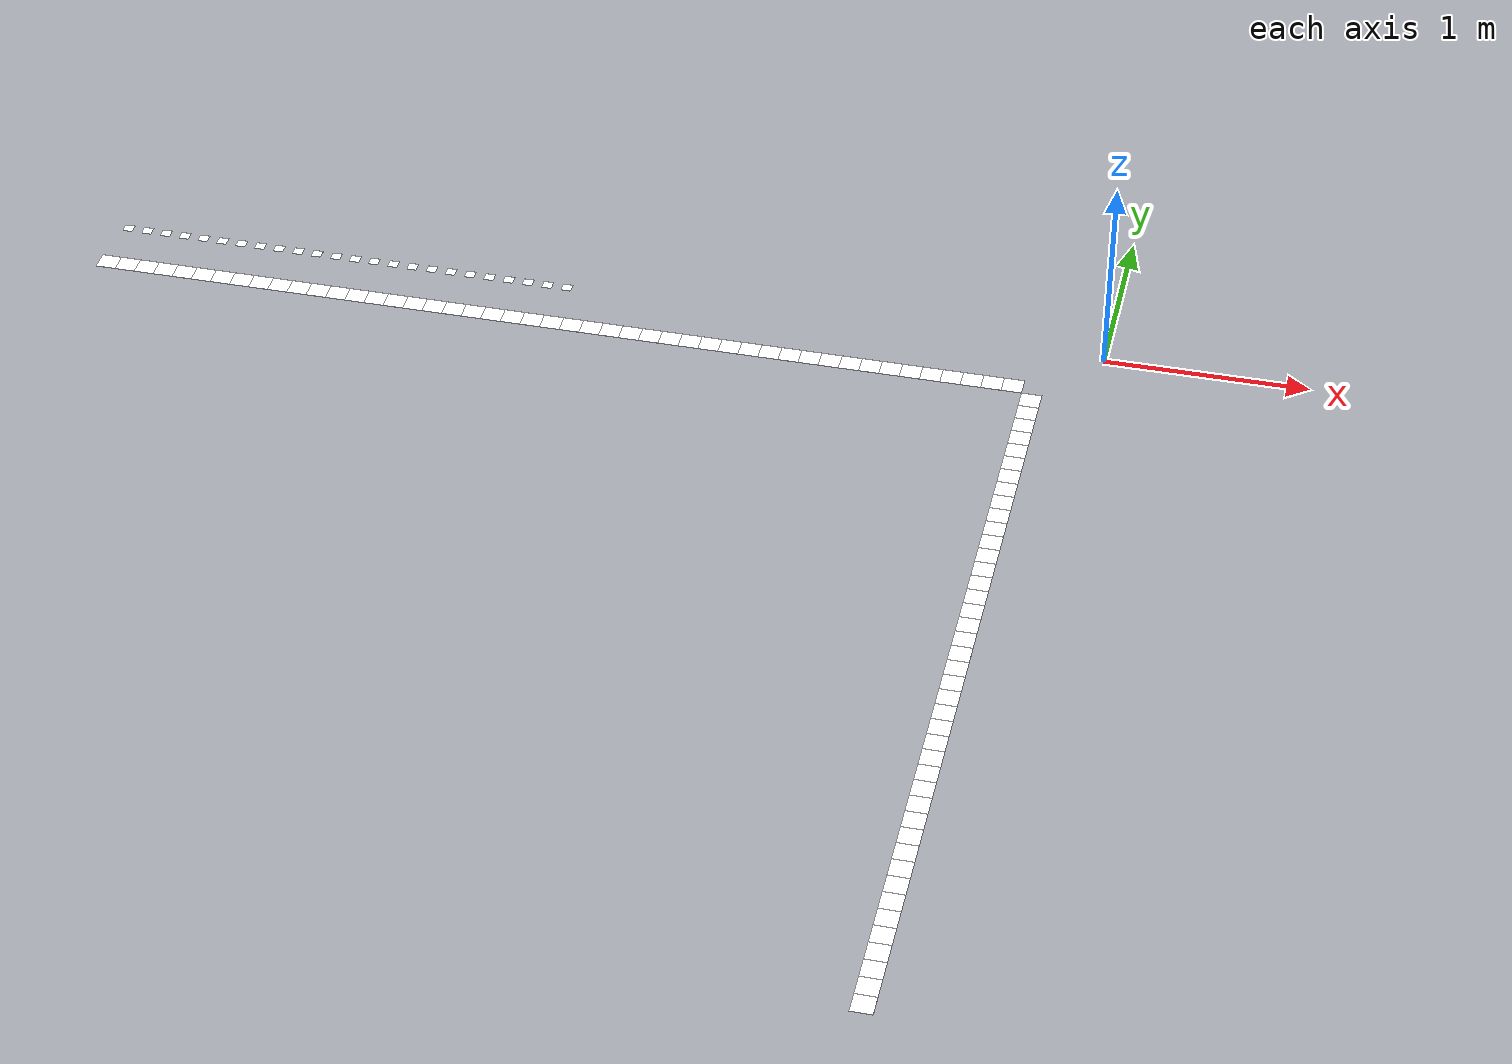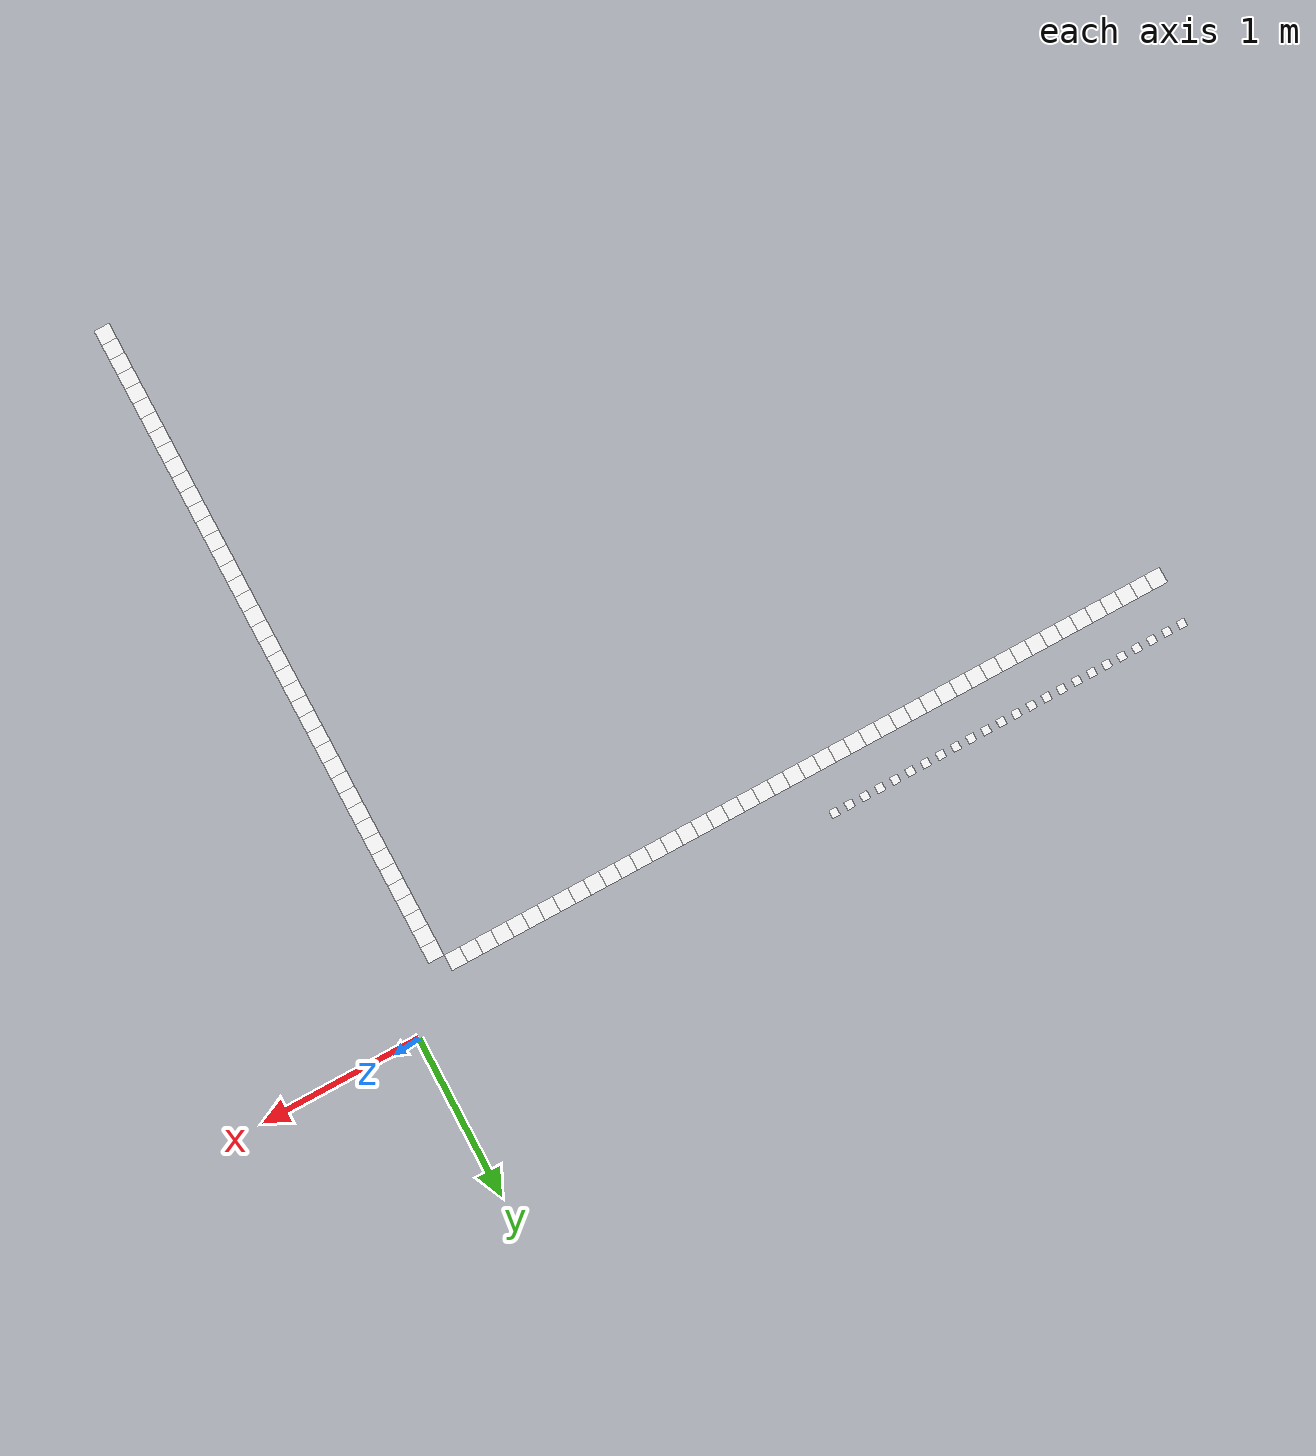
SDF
<sdf version="1.5">
 <model name="AutoNOMOS_mini_intersection">
  <static>true</static>
  <link name="L8_p4">
   <pose>-0.4 -0.3 .011 0 0 0</pose>
   <visual name="visual_L8_p4">
    <cast_shadows>false</cast_shadows>
    <geometry><plane><normal>0 0 1</normal><size>.1 .1</size></plane></geometry>
    <material>
     <ambient>0 0 0 0</ambient>
     <diffuse>1 1 1 0</diffuse>
     <specular>0 0 0 0</specular>
     <emissive>0 0 0 0</emissive>
    </material>
   </visual>
  </link>
  <link name="L9_p4">
   <pose>-0.3 -0.4 .011 0 0 0</pose>
   <visual name="visual_L9_p4">
    <cast_shadows>false</cast_shadows>
    <geometry><plane><normal>0 0 1</normal><size>.1 .1</size></plane></geometry>
    <material>
     <ambient>0 0 0 0</ambient>
     <diffuse>1 1 1 0</diffuse>
     <specular>0 0 0 0</specular>
     <emissive>0 0 0 0</emissive>
    </material>
   </visual>
  </link>
  <link name="L8_p5">
   <pose>-0.5 -0.3 .011 0 0 0</pose>
   <visual name="visual_L8_p5">
    <cast_shadows>false</cast_shadows>
    <geometry><plane><normal>0 0 1</normal><size>.1 .1</size></plane></geometry>
    <material>
     <ambient>0 0 0 0</ambient>
     <diffuse>1 1 1 0</diffuse>
     <specular>0 0 0 0</specular>
     <emissive>0 0 0 0</emissive>
    </material>
   </visual>
  </link>
  <link name="L9_p5">
   <pose>-0.3 -0.5 .011 0 0 0</pose>
   <visual name="visual_L9_p5">
    <cast_shadows>false</cast_shadows>
    <geometry><plane><normal>0 0 1</normal><size>.1 .1</size></plane></geometry>
    <material>
     <ambient>0 0 0 0</ambient>
     <diffuse>1 1 1 0</diffuse>
     <specular>0 0 0 0</specular>
     <emissive>0 0 0 0</emissive>
    </material>
   </visual>
  </link>
  <link name="L8_p6">
   <pose>-0.6 -0.3 .011 0 0 0</pose>
   <visual name="visual_L8_p6">
    <cast_shadows>false</cast_shadows>
    <geometry><plane><normal>0 0 1</normal><size>.1 .1</size></plane></geometry>
    <material>
     <ambient>0 0 0 0</ambient>
     <diffuse>1 1 1 0</diffuse>
     <specular>0 0 0 0</specular>
     <emissive>0 0 0 0</emissive>
    </material>
   </visual>
  </link>
  <link name="L9_p6">
   <pose>-0.3 -0.6 .011 0 0 0</pose>
   <visual name="visual_L9_p6">
    <cast_shadows>false</cast_shadows>
    <geometry><plane><normal>0 0 1</normal><size>.1 .1</size></plane></geometry>
    <material>
     <ambient>0 0 0 0</ambient>
     <diffuse>1 1 1 0</diffuse>
     <specular>0 0 0 0</specular>
     <emissive>0 0 0 0</emissive>
    </material>
   </visual>
  </link>
  <link name="L8_p7">
   <pose>-0.7 -0.3 .011 0 0 0</pose>
   <visual name="visual_L8_p7">
    <cast_shadows>false</cast_shadows>
    <geometry><plane><normal>0 0 1</normal><size>.1 .1</size></plane></geometry>
    <material>
     <ambient>0 0 0 0</ambient>
     <diffuse>1 1 1 0</diffuse>
     <specular>0 0 0 0</specular>
     <emissive>0 0 0 0</emissive>
    </material>
   </visual>
  </link>
  <link name="L9_p7">
   <pose>-0.3 -0.7 .011 0 0 0</pose>
   <visual name="visual_L9_p7">
    <cast_shadows>false</cast_shadows>
    <geometry><plane><normal>0 0 1</normal><size>.1 .1</size></plane></geometry>
    <material>
     <ambient>0 0 0 0</ambient>
     <diffuse>1 1 1 0</diffuse>
     <specular>0 0 0 0</specular>
     <emissive>0 0 0 0</emissive>
    </material>
   </visual>
  </link>
  <link name="L8_p8">
   <pose>-0.8 -0.3 .011 0 0 0</pose>
   <visual name="visual_L8_p8">
    <cast_shadows>false</cast_shadows>
    <geometry><plane><normal>0 0 1</normal><size>.1 .1</size></plane></geometry>
    <material>
     <ambient>0 0 0 0</ambient>
     <diffuse>1 1 1 0</diffuse>
     <specular>0 0 0 0</specular>
     <emissive>0 0 0 0</emissive>
    </material>
   </visual>
  </link>
  <link name="L9_p8">
   <pose>-0.3 -0.8 .011 0 0 0</pose>
   <visual name="visual_L9_p8">
    <cast_shadows>false</cast_shadows>
    <geometry><plane><normal>0 0 1</normal><size>.1 .1</size></plane></geometry>
    <material>
     <ambient>0 0 0 0</ambient>
     <diffuse>1 1 1 0</diffuse>
     <specular>0 0 0 0</specular>
     <emissive>0 0 0 0</emissive>
    </material>
   </visual>
  </link>
  <link name="L8_p9">
   <pose>-0.9 -0.3 .011 0 0 0</pose>
   <visual name="visual_L8_p9">
    <cast_shadows>false</cast_shadows>
    <geometry><plane><normal>0 0 1</normal><size>.1 .1</size></plane></geometry>
    <material>
     <ambient>0 0 0 0</ambient>
     <diffuse>1 1 1 0</diffuse>
     <specular>0 0 0 0</specular>
     <emissive>0 0 0 0</emissive>
    </material>
   </visual>
  </link>
  <link name="L9_p9">
   <pose>-0.3 -0.9 .011 0 0 0</pose>
   <visual name="visual_L9_p9">
    <cast_shadows>false</cast_shadows>
    <geometry><plane><normal>0 0 1</normal><size>.1 .1</size></plane></geometry>
    <material>
     <ambient>0 0 0 0</ambient>
     <diffuse>1 1 1 0</diffuse>
     <specular>0 0 0 0</specular>
     <emissive>0 0 0 0</emissive>
    </material>
   </visual>
  </link>
  <link name="L8_p10">
   <pose>-1 -0.3 .011 0 0 0</pose>
   <visual name="visual_L8_p10">
    <cast_shadows>false</cast_shadows>
    <geometry><plane><normal>0 0 1</normal><size>.1 .1</size></plane></geometry>
    <material>
     <ambient>0 0 0 0</ambient>
     <diffuse>1 1 1 0</diffuse>
     <specular>0 0 0 0</specular>
     <emissive>0 0 0 0</emissive>
    </material>
   </visual>
  </link>
  <link name="L9_p10">
   <pose>-0.3 -1 .011 0 0 0</pose>
   <visual name="visual_L9_p10">
    <cast_shadows>false</cast_shadows>
    <geometry><plane><normal>0 0 1</normal><size>.1 .1</size></plane></geometry>
    <material>
     <ambient>0 0 0 0</ambient>
     <diffuse>1 1 1 0</diffuse>
     <specular>0 0 0 0</specular>
     <emissive>0 0 0 0</emissive>
    </material>
   </visual>
  </link>
  <link name="L8_p11">
   <pose>-1.1 -0.3 .011 0 0 0</pose>
   <visual name="visual_L8_p11">
    <cast_shadows>false</cast_shadows>
    <geometry><plane><normal>0 0 1</normal><size>.1 .1</size></plane></geometry>
    <material>
     <ambient>0 0 0 0</ambient>
     <diffuse>1 1 1 0</diffuse>
     <specular>0 0 0 0</specular>
     <emissive>0 0 0 0</emissive>
    </material>
   </visual>
  </link>
  <link name="L9_p11">
   <pose>-0.3 -1.1 .011 0 0 0</pose>
   <visual name="visual_L9_p11">
    <cast_shadows>false</cast_shadows>
    <geometry><plane><normal>0 0 1</normal><size>.1 .1</size></plane></geometry>
    <material>
     <ambient>0 0 0 0</ambient>
     <diffuse>1 1 1 0</diffuse>
     <specular>0 0 0 0</specular>
     <emissive>0 0 0 0</emissive>
    </material>
   </visual>
  </link>
  <link name="L8_p12">
   <pose>-1.2 -0.3 .011 0 0 0</pose>
   <visual name="visual_L8_p12">
    <cast_shadows>false</cast_shadows>
    <geometry><plane><normal>0 0 1</normal><size>.1 .1</size></plane></geometry>
    <material>
     <ambient>0 0 0 0</ambient>
     <diffuse>1 1 1 0</diffuse>
     <specular>0 0 0 0</specular>
     <emissive>0 0 0 0</emissive>
    </material>
   </visual>
  </link>
  <link name="L9_p12">
   <pose>-0.3 -1.2 .011 0 0 0</pose>
   <visual name="visual_L9_p12">
    <cast_shadows>false</cast_shadows>
    <geometry><plane><normal>0 0 1</normal><size>.1 .1</size></plane></geometry>
    <material>
     <ambient>0 0 0 0</ambient>
     <diffuse>1 1 1 0</diffuse>
     <specular>0 0 0 0</specular>
     <emissive>0 0 0 0</emissive>
    </material>
   </visual>
  </link>
  <link name="L8_p13">
   <pose>-1.3 -0.3 .011 0 0 0</pose>
   <visual name="visual_L8_p13">
    <cast_shadows>false</cast_shadows>
    <geometry><plane><normal>0 0 1</normal><size>.1 .1</size></plane></geometry>
    <material>
     <ambient>0 0 0 0</ambient>
     <diffuse>1 1 1 0</diffuse>
     <specular>0 0 0 0</specular>
     <emissive>0 0 0 0</emissive>
    </material>
   </visual>
  </link>
  <link name="L9_p13">
   <pose>-0.3 -1.3 .011 0 0 0</pose>
   <visual name="visual_L9_p13">
    <cast_shadows>false</cast_shadows>
    <geometry><plane><normal>0 0 1</normal><size>.1 .1</size></plane></geometry>
    <material>
     <ambient>0 0 0 0</ambient>
     <diffuse>1 1 1 0</diffuse>
     <specular>0 0 0 0</specular>
     <emissive>0 0 0 0</emissive>
    </material>
   </visual>
  </link>
  <link name="L8_p14">
   <pose>-1.4 -0.3 .011 0 0 0</pose>
   <visual name="visual_L8_p14">
    <cast_shadows>false</cast_shadows>
    <geometry><plane><normal>0 0 1</normal><size>.1 .1</size></plane></geometry>
    <material>
     <ambient>0 0 0 0</ambient>
     <diffuse>1 1 1 0</diffuse>
     <specular>0 0 0 0</specular>
     <emissive>0 0 0 0</emissive>
    </material>
   </visual>
  </link>
  <link name="L9_p14">
   <pose>-0.3 -1.4 .011 0 0 0</pose>
   <visual name="visual_L9_p14">
    <cast_shadows>false</cast_shadows>
    <geometry><plane><normal>0 0 1</normal><size>.1 .1</size></plane></geometry>
    <material>
     <ambient>0 0 0 0</ambient>
     <diffuse>1 1 1 0</diffuse>
     <specular>0 0 0 0</specular>
     <emissive>0 0 0 0</emissive>
    </material>
   </visual>
  </link>
  <link name="L8_p15">
   <pose>-1.5 -0.3 .011 0 0 0</pose>
   <visual name="visual_L8_p15">
    <cast_shadows>false</cast_shadows>
    <geometry><plane><normal>0 0 1</normal><size>.1 .1</size></plane></geometry>
    <material>
     <ambient>0 0 0 0</ambient>
     <diffuse>1 1 1 0</diffuse>
     <specular>0 0 0 0</specular>
     <emissive>0 0 0 0</emissive>
    </material>
   </visual>
  </link>
  <link name="L9_p15">
   <pose>-0.3 -1.5 .011 0 0 0</pose>
   <visual name="visual_L9_p15">
    <cast_shadows>false</cast_shadows>
    <geometry><plane><normal>0 0 1</normal><size>.1 .1</size></plane></geometry>
    <material>
     <ambient>0 0 0 0</ambient>
     <diffuse>1 1 1 0</diffuse>
     <specular>0 0 0 0</specular>
     <emissive>0 0 0 0</emissive>
    </material>
   </visual>
  </link>
  <link name="L8_p16">
   <pose>-1.6 -0.3 .011 0 0 0</pose>
   <visual name="visual_L8_p16">
    <cast_shadows>false</cast_shadows>
    <geometry><plane><normal>0 0 1</normal><size>.1 .1</size></plane></geometry>
    <material>
     <ambient>0 0 0 0</ambient>
     <diffuse>1 1 1 0</diffuse>
     <specular>0 0 0 0</specular>
     <emissive>0 0 0 0</emissive>
    </material>
   </visual>
  </link>
  <link name="L9_p16">
   <pose>-0.3 -1.6 .011 0 0 0</pose>
   <visual name="visual_L9_p16">
    <cast_shadows>false</cast_shadows>
    <geometry><plane><normal>0 0 1</normal><size>.1 .1</size></plane></geometry>
    <material>
     <ambient>0 0 0 0</ambient>
     <diffuse>1 1 1 0</diffuse>
     <specular>0 0 0 0</specular>
     <emissive>0 0 0 0</emissive>
    </material>
   </visual>
  </link>
  <link name="L8_p17">
   <pose>-1.7 -0.3 .011 0 0 0</pose>
   <visual name="visual_L8_p17">
    <cast_shadows>false</cast_shadows>
    <geometry><plane><normal>0 0 1</normal><size>.1 .1</size></plane></geometry>
    <material>
     <ambient>0 0 0 0</ambient>
     <diffuse>1 1 1 0</diffuse>
     <specular>0 0 0 0</specular>
     <emissive>0 0 0 0</emissive>
    </material>
   </visual>
  </link>
  <link name="L9_p17">
   <pose>-0.3 -1.7 .011 0 0 0</pose>
   <visual name="visual_L9_p17">
    <cast_shadows>false</cast_shadows>
    <geometry><plane><normal>0 0 1</normal><size>.1 .1</size></plane></geometry>
    <material>
     <ambient>0 0 0 0</ambient>
     <diffuse>1 1 1 0</diffuse>
     <specular>0 0 0 0</specular>
     <emissive>0 0 0 0</emissive>
    </material>
   </visual>
  </link>
  <link name="L8_p18">
   <pose>-1.8 -0.3 .011 0 0 0</pose>
   <visual name="visual_L8_p18">
    <cast_shadows>false</cast_shadows>
    <geometry><plane><normal>0 0 1</normal><size>.1 .1</size></plane></geometry>
    <material>
     <ambient>0 0 0 0</ambient>
     <diffuse>1 1 1 0</diffuse>
     <specular>0 0 0 0</specular>
     <emissive>0 0 0 0</emissive>
    </material>
   </visual>
  </link>
  <link name="L9_p18">
   <pose>-0.3 -1.8 .011 0 0 0</pose>
   <visual name="visual_L9_p18">
    <cast_shadows>false</cast_shadows>
    <geometry><plane><normal>0 0 1</normal><size>.1 .1</size></plane></geometry>
    <material>
     <ambient>0 0 0 0</ambient>
     <diffuse>1 1 1 0</diffuse>
     <specular>0 0 0 0</specular>
     <emissive>0 0 0 0</emissive>
    </material>
   </visual>
  </link>
  <link name="L8_p19">
   <pose>-1.9 -0.3 .011 0 0 0</pose>
   <visual name="visual_L8_p19">
    <cast_shadows>false</cast_shadows>
    <geometry><plane><normal>0 0 1</normal><size>.1 .1</size></plane></geometry>
    <material>
     <ambient>0 0 0 0</ambient>
     <diffuse>1 1 1 0</diffuse>
     <specular>0 0 0 0</specular>
     <emissive>0 0 0 0</emissive>
    </material>
   </visual>
  </link>
  <link name="L9_p19">
   <pose>-0.3 -1.9 .011 0 0 0</pose>
   <visual name="visual_L9_p19">
    <cast_shadows>false</cast_shadows>
    <geometry><plane><normal>0 0 1</normal><size>.1 .1</size></plane></geometry>
    <material>
     <ambient>0 0 0 0</ambient>
     <diffuse>1 1 1 0</diffuse>
     <specular>0 0 0 0</specular>
     <emissive>0 0 0 0</emissive>
    </material>
   </visual>
  </link>
  <link name="L8_p20">
   <pose>-2 -0.3 .011 0 0 0</pose>
   <visual name="visual_L8_p20">
    <cast_shadows>false</cast_shadows>
    <geometry><plane><normal>0 0 1</normal><size>.1 .1</size></plane></geometry>
    <material>
     <ambient>0 0 0 0</ambient>
     <diffuse>1 1 1 0</diffuse>
     <specular>0 0 0 0</specular>
     <emissive>0 0 0 0</emissive>
    </material>
   </visual>
  </link>
  <link name="L9_p20">
   <pose>-0.3 -2 .011 0 0 0</pose>
   <visual name="visual_L9_p20">
    <cast_shadows>false</cast_shadows>
    <geometry><plane><normal>0 0 1</normal><size>.1 .1</size></plane></geometry>
    <material>
     <ambient>0 0 0 0</ambient>
     <diffuse>1 1 1 0</diffuse>
     <specular>0 0 0 0</specular>
     <emissive>0 0 0 0</emissive>
    </material>
   </visual>
  </link>
  <link name="L8_p21">
   <pose>-2.1 -0.3 .011 0 0 0</pose>
   <visual name="visual_L8_p21">
    <cast_shadows>false</cast_shadows>
    <geometry><plane><normal>0 0 1</normal><size>.1 .1</size></plane></geometry>
    <material>
     <ambient>0 0 0 0</ambient>
     <diffuse>1 1 1 0</diffuse>
     <specular>0 0 0 0</specular>
     <emissive>0 0 0 0</emissive>
    </material>
   </visual>
  </link>
  <link name="L9_p21">
   <pose>-0.3 -2.1 .011 0 0 0</pose>
   <visual name="visual_L9_p21">
    <cast_shadows>false</cast_shadows>
    <geometry><plane><normal>0 0 1</normal><size>.1 .1</size></plane></geometry>
    <material>
     <ambient>0 0 0 0</ambient>
     <diffuse>1 1 1 0</diffuse>
     <specular>0 0 0 0</specular>
     <emissive>0 0 0 0</emissive>
    </material>
   </visual>
  </link>
  <link name="L8_p22">
   <pose>-2.2 -0.3 .011 0 0 0</pose>
   <visual name="visual_L8_p22">
    <cast_shadows>false</cast_shadows>
    <geometry><plane><normal>0 0 1</normal><size>.1 .1</size></plane></geometry>
    <material>
     <ambient>0 0 0 0</ambient>
     <diffuse>1 1 1 0</diffuse>
     <specular>0 0 0 0</specular>
     <emissive>0 0 0 0</emissive>
    </material>
   </visual>
  </link>
  <link name="L9_p22">
   <pose>-0.3 -2.2 .011 0 0 0</pose>
   <visual name="visual_L9_p22">
    <cast_shadows>false</cast_shadows>
    <geometry><plane><normal>0 0 1</normal><size>.1 .1</size></plane></geometry>
    <material>
     <ambient>0 0 0 0</ambient>
     <diffuse>1 1 1 0</diffuse>
     <specular>0 0 0 0</specular>
     <emissive>0 0 0 0</emissive>
    </material>
   </visual>
  </link>
  <link name="L8_p23">
   <pose>-2.3 -0.3 .011 0 0 0</pose>
   <visual name="visual_L8_p23">
    <cast_shadows>false</cast_shadows>
    <geometry><plane><normal>0 0 1</normal><size>.1 .1</size></plane></geometry>
    <material>
     <ambient>0 0 0 0</ambient>
     <diffuse>1 1 1 0</diffuse>
     <specular>0 0 0 0</specular>
     <emissive>0 0 0 0</emissive>
    </material>
   </visual>
  </link>
  <link name="L9_p23">
   <pose>-0.3 -2.3 .011 0 0 0</pose>
   <visual name="visual_L9_p23">
    <cast_shadows>false</cast_shadows>
    <geometry><plane><normal>0 0 1</normal><size>.1 .1</size></plane></geometry>
    <material>
     <ambient>0 0 0 0</ambient>
     <diffuse>1 1 1 0</diffuse>
     <specular>0 0 0 0</specular>
     <emissive>0 0 0 0</emissive>
    </material>
   </visual>
  </link>
  <link name="L8_p24">
   <pose>-2.4 -0.3 .011 0 0 0</pose>
   <visual name="visual_L8_p24">
    <cast_shadows>false</cast_shadows>
    <geometry><plane><normal>0 0 1</normal><size>.1 .1</size></plane></geometry>
    <material>
     <ambient>0 0 0 0</ambient>
     <diffuse>1 1 1 0</diffuse>
     <specular>0 0 0 0</specular>
     <emissive>0 0 0 0</emissive>
    </material>
   </visual>
  </link>
  <link name="L9_p24">
   <pose>-0.3 -2.4 .011 0 0 0</pose>
   <visual name="visual_L9_p24">
    <cast_shadows>false</cast_shadows>
    <geometry><plane><normal>0 0 1</normal><size>.1 .1</size></plane></geometry>
    <material>
     <ambient>0 0 0 0</ambient>
     <diffuse>1 1 1 0</diffuse>
     <specular>0 0 0 0</specular>
     <emissive>0 0 0 0</emissive>
    </material>
   </visual>
  </link>
  <link name="L8_p25">
   <pose>-2.5 -0.3 .011 0 0 0</pose>
   <visual name="visual_L8_p25">
    <cast_shadows>false</cast_shadows>
    <geometry><plane><normal>0 0 1</normal><size>.1 .1</size></plane></geometry>
    <material>
     <ambient>0 0 0 0</ambient>
     <diffuse>1 1 1 0</diffuse>
     <specular>0 0 0 0</specular>
     <emissive>0 0 0 0</emissive>
    </material>
   </visual>
  </link>
  <link name="L9_p25">
   <pose>-0.3 -2.5 .011 0 0 0</pose>
   <visual name="visual_L9_p25">
    <cast_shadows>false</cast_shadows>
    <geometry><plane><normal>0 0 1</normal><size>.1 .1</size></plane></geometry>
    <material>
     <ambient>0 0 0 0</ambient>
     <diffuse>1 1 1 0</diffuse>
     <specular>0 0 0 0</specular>
     <emissive>0 0 0 0</emissive>
    </material>
   </visual>
  </link>
  <link name="L8_p26">
   <pose>-2.6 -0.3 .011 0 0 0</pose>
   <visual name="visual_L8_p26">
    <cast_shadows>false</cast_shadows>
    <geometry><plane><normal>0 0 1</normal><size>.1 .1</size></plane></geometry>
    <material>
     <ambient>0 0 0 0</ambient>
     <diffuse>1 1 1 0</diffuse>
     <specular>0 0 0 0</specular>
     <emissive>0 0 0 0</emissive>
    </material>
   </visual>
  </link>
  <link name="L9_p26">
   <pose>-0.3 -2.6 .011 0 0 0</pose>
   <visual name="visual_L9_p26">
    <cast_shadows>false</cast_shadows>
    <geometry><plane><normal>0 0 1</normal><size>.1 .1</size></plane></geometry>
    <material>
     <ambient>0 0 0 0</ambient>
     <diffuse>1 1 1 0</diffuse>
     <specular>0 0 0 0</specular>
     <emissive>0 0 0 0</emissive>
    </material>
   </visual>
  </link>
  <link name="L7_p27">
   <pose>-2.7 0 .011 0 0 0</pose>
   <visual name="visual_L7_p27">
    <cast_shadows>false</cast_shadows>
    <geometry><plane><normal>0 0 1</normal><size>.05 .05</size></plane></geometry>
    <material>
     <ambient>0 0 0 0</ambient>
     <diffuse>1 1 1 0</diffuse>
     <specular>0 0 0 0</specular>
     <emissive>0 0 0 0</emissive>
    </material>
   </visual>
  </link>
  <link name="L8_p27">
   <pose>-2.7 -0.3 .011 0 0 0</pose>
   <visual name="visual_L8_p27">
    <cast_shadows>false</cast_shadows>
    <geometry><plane><normal>0 0 1</normal><size>.1 .1</size></plane></geometry>
    <material>
     <ambient>0 0 0 0</ambient>
     <diffuse>1 1 1 0</diffuse>
     <specular>0 0 0 0</specular>
     <emissive>0 0 0 0</emissive>
    </material>
   </visual>
  </link>
  <link name="L9_p27">
   <pose>-0.3 -2.7 .011 0 0 0</pose>
   <visual name="visual_L9_p27">
    <cast_shadows>false</cast_shadows>
    <geometry><plane><normal>0 0 1</normal><size>.1 .1</size></plane></geometry>
    <material>
     <ambient>0 0 0 0</ambient>
     <diffuse>1 1 1 0</diffuse>
     <specular>0 0 0 0</specular>
     <emissive>0 0 0 0</emissive>
    </material>
   </visual>
  </link>
  <link name="L7_p28">
   <pose>-2.8 0 .011 0 0 0</pose>
   <visual name="visual_L7_p28">
    <cast_shadows>false</cast_shadows>
    <geometry><plane><normal>0 0 1</normal><size>.05 .05</size></plane></geometry>
    <material>
     <ambient>0 0 0 0</ambient>
     <diffuse>1 1 1 0</diffuse>
     <specular>0 0 0 0</specular>
     <emissive>0 0 0 0</emissive>
    </material>
   </visual>
  </link>
  <link name="L8_p28">
   <pose>-2.8 -0.3 .011 0 0 0</pose>
   <visual name="visual_L8_p28">
    <cast_shadows>false</cast_shadows>
    <geometry><plane><normal>0 0 1</normal><size>.1 .1</size></plane></geometry>
    <material>
     <ambient>0 0 0 0</ambient>
     <diffuse>1 1 1 0</diffuse>
     <specular>0 0 0 0</specular>
     <emissive>0 0 0 0</emissive>
    </material>
   </visual>
  </link>
  <link name="L9_p28">
   <pose>-0.3 -2.8 .011 0 0 0</pose>
   <visual name="visual_L9_p28">
    <cast_shadows>false</cast_shadows>
    <geometry><plane><normal>0 0 1</normal><size>.1 .1</size></plane></geometry>
    <material>
     <ambient>0 0 0 0</ambient>
     <diffuse>1 1 1 0</diffuse>
     <specular>0 0 0 0</specular>
     <emissive>0 0 0 0</emissive>
    </material>
   </visual>
  </link>
  <link name="L7_p29">
   <pose>-2.9 0 .011 0 0 0</pose>
   <visual name="visual_L7_p29">
    <cast_shadows>false</cast_shadows>
    <geometry><plane><normal>0 0 1</normal><size>.05 .05</size></plane></geometry>
    <material>
     <ambient>0 0 0 0</ambient>
     <diffuse>1 1 1 0</diffuse>
     <specular>0 0 0 0</specular>
     <emissive>0 0 0 0</emissive>
    </material>
   </visual>
  </link>
  <link name="L8_p29">
   <pose>-2.9 -0.3 .011 0 0 0</pose>
   <visual name="visual_L8_p29">
    <cast_shadows>false</cast_shadows>
    <geometry><plane><normal>0 0 1</normal><size>.1 .1</size></plane></geometry>
    <material>
     <ambient>0 0 0 0</ambient>
     <diffuse>1 1 1 0</diffuse>
     <specular>0 0 0 0</specular>
     <emissive>0 0 0 0</emissive>
    </material>
   </visual>
  </link>
  <link name="L9_p29">
   <pose>-0.3 -2.9 .011 0 0 0</pose>
   <visual name="visual_L9_p29">
    <cast_shadows>false</cast_shadows>
    <geometry><plane><normal>0 0 1</normal><size>.1 .1</size></plane></geometry>
    <material>
     <ambient>0 0 0 0</ambient>
     <diffuse>1 1 1 0</diffuse>
     <specular>0 0 0 0</specular>
     <emissive>0 0 0 0</emissive>
    </material>
   </visual>
  </link>
  <link name="L7_p30">
   <pose>-3 0 .011 0 0 0</pose>
   <visual name="visual_L7_p30">
    <cast_shadows>false</cast_shadows>
    <geometry><plane><normal>0 0 1</normal><size>.05 .05</size></plane></geometry>
    <material>
     <ambient>0 0 0 0</ambient>
     <diffuse>1 1 1 0</diffuse>
     <specular>0 0 0 0</specular>
     <emissive>0 0 0 0</emissive>
    </material>
   </visual>
  </link>
  <link name="L8_p30">
   <pose>-3 -0.3 .011 0 0 0</pose>
   <visual name="visual_L8_p30">
    <cast_shadows>false</cast_shadows>
    <geometry><plane><normal>0 0 1</normal><size>.1 .1</size></plane></geometry>
    <material>
     <ambient>0 0 0 0</ambient>
     <diffuse>1 1 1 0</diffuse>
     <specular>0 0 0 0</specular>
     <emissive>0 0 0 0</emissive>
    </material>
   </visual>
  </link>
  <link name="L9_p30">
   <pose>-0.3 -3 .011 0 0 0</pose>
   <visual name="visual_L9_p30">
    <cast_shadows>false</cast_shadows>
    <geometry><plane><normal>0 0 1</normal><size>.1 .1</size></plane></geometry>
    <material>
     <ambient>0 0 0 0</ambient>
     <diffuse>1 1 1 0</diffuse>
     <specular>0 0 0 0</specular>
     <emissive>0 0 0 0</emissive>
    </material>
   </visual>
  </link>
  <link name="L7_p31">
   <pose>-3.1 0 .011 0 0 0</pose>
   <visual name="visual_L7_p31">
    <cast_shadows>false</cast_shadows>
    <geometry><plane><normal>0 0 1</normal><size>.05 .05</size></plane></geometry>
    <material>
     <ambient>0 0 0 0</ambient>
     <diffuse>1 1 1 0</diffuse>
     <specular>0 0 0 0</specular>
     <emissive>0 0 0 0</emissive>
    </material>
   </visual>
  </link>
  <link name="L8_p31">
   <pose>-3.1 -0.3 .011 0 0 0</pose>
   <visual name="visual_L8_p31">
    <cast_shadows>false</cast_shadows>
    <geometry><plane><normal>0 0 1</normal><size>.1 .1</size></plane></geometry>
    <material>
     <ambient>0 0 0 0</ambient>
     <diffuse>1 1 1 0</diffuse>
     <specular>0 0 0 0</specular>
     <emissive>0 0 0 0</emissive>
    </material>
   </visual>
  </link>
  <link name="L9_p31">
   <pose>-0.3 -3.1 .011 0 0 0</pose>
   <visual name="visual_L9_p31">
    <cast_shadows>false</cast_shadows>
    <geometry><plane><normal>0 0 1</normal><size>.1 .1</size></plane></geometry>
    <material>
     <ambient>0 0 0 0</ambient>
     <diffuse>1 1 1 0</diffuse>
     <specular>0 0 0 0</specular>
     <emissive>0 0 0 0</emissive>
    </material>
   </visual>
  </link>
  <link name="L7_p32">
   <pose>-3.2 0 .011 0 0 0</pose>
   <visual name="visual_L7_p32">
    <cast_shadows>false</cast_shadows>
    <geometry><plane><normal>0 0 1</normal><size>.05 .05</size></plane></geometry>
    <material>
     <ambient>0 0 0 0</ambient>
     <diffuse>1 1 1 0</diffuse>
     <specular>0 0 0 0</specular>
     <emissive>0 0 0 0</emissive>
    </material>
   </visual>
  </link>
  <link name="L8_p32">
   <pose>-3.2 -0.3 .011 0 0 0</pose>
   <visual name="visual_L8_p32">
    <cast_shadows>false</cast_shadows>
    <geometry><plane><normal>0 0 1</normal><size>.1 .1</size></plane></geometry>
    <material>
     <ambient>0 0 0 0</ambient>
     <diffuse>1 1 1 0</diffuse>
     <specular>0 0 0 0</specular>
     <emissive>0 0 0 0</emissive>
    </material>
   </visual>
  </link>
  <link name="L9_p32">
   <pose>-0.3 -3.2 .011 0 0 0</pose>
   <visual name="visual_L9_p32">
    <cast_shadows>false</cast_shadows>
    <geometry><plane><normal>0 0 1</normal><size>.1 .1</size></plane></geometry>
    <material>
     <ambient>0 0 0 0</ambient>
     <diffuse>1 1 1 0</diffuse>
     <specular>0 0 0 0</specular>
     <emissive>0 0 0 0</emissive>
    </material>
   </visual>
  </link>
  <link name="L7_p33">
   <pose>-3.3 0 .011 0 0 0</pose>
   <visual name="visual_L7_p33">
    <cast_shadows>false</cast_shadows>
    <geometry><plane><normal>0 0 1</normal><size>.05 .05</size></plane></geometry>
    <material>
     <ambient>0 0 0 0</ambient>
     <diffuse>1 1 1 0</diffuse>
     <specular>0 0 0 0</specular>
     <emissive>0 0 0 0</emissive>
    </material>
   </visual>
  </link>
  <link name="L8_p33">
   <pose>-3.3 -0.3 .011 0 0 0</pose>
   <visual name="visual_L8_p33">
    <cast_shadows>false</cast_shadows>
    <geometry><plane><normal>0 0 1</normal><size>.1 .1</size></plane></geometry>
    <material>
     <ambient>0 0 0 0</ambient>
     <diffuse>1 1 1 0</diffuse>
     <specular>0 0 0 0</specular>
     <emissive>0 0 0 0</emissive>
    </material>
   </visual>
  </link>
  <link name="L9_p33">
   <pose>-0.3 -3.3 .011 0 0 0</pose>
   <visual name="visual_L9_p33">
    <cast_shadows>false</cast_shadows>
    <geometry><plane><normal>0 0 1</normal><size>.1 .1</size></plane></geometry>
    <material>
     <ambient>0 0 0 0</ambient>
     <diffuse>1 1 1 0</diffuse>
     <specular>0 0 0 0</specular>
     <emissive>0 0 0 0</emissive>
    </material>
   </visual>
  </link>
  <link name="L7_p34">
   <pose>-3.4 0 .011 0 0 0</pose>
   <visual name="visual_L7_p34">
    <cast_shadows>false</cast_shadows>
    <geometry><plane><normal>0 0 1</normal><size>.05 .05</size></plane></geometry>
    <material>
     <ambient>0 0 0 0</ambient>
     <diffuse>1 1 1 0</diffuse>
     <specular>0 0 0 0</specular>
     <emissive>0 0 0 0</emissive>
    </material>
   </visual>
  </link>
  <link name="L8_p34">
   <pose>-3.4 -0.3 .011 0 0 0</pose>
   <visual name="visual_L8_p34">
    <cast_shadows>false</cast_shadows>
    <geometry><plane><normal>0 0 1</normal><size>.1 .1</size></plane></geometry>
    <material>
     <ambient>0 0 0 0</ambient>
     <diffuse>1 1 1 0</diffuse>
     <specular>0 0 0 0</specular>
     <emissive>0 0 0 0</emissive>
    </material>
   </visual>
  </link>
  <link name="L9_p34">
   <pose>-0.3 -3.4 .011 0 0 0</pose>
   <visual name="visual_L9_p34">
    <cast_shadows>false</cast_shadows>
    <geometry><plane><normal>0 0 1</normal><size>.1 .1</size></plane></geometry>
    <material>
     <ambient>0 0 0 0</ambient>
     <diffuse>1 1 1 0</diffuse>
     <specular>0 0 0 0</specular>
     <emissive>0 0 0 0</emissive>
    </material>
   </visual>
  </link>
  <link name="L7_p35">
   <pose>-3.5 0 .011 0 0 0</pose>
   <visual name="visual_L7_p35">
    <cast_shadows>false</cast_shadows>
    <geometry><plane><normal>0 0 1</normal><size>.05 .05</size></plane></geometry>
    <material>
     <ambient>0 0 0 0</ambient>
     <diffuse>1 1 1 0</diffuse>
     <specular>0 0 0 0</specular>
     <emissive>0 0 0 0</emissive>
    </material>
   </visual>
  </link>
  <link name="L8_p35">
   <pose>-3.5 -0.3 .011 0 0 0</pose>
   <visual name="visual_L8_p35">
    <cast_shadows>false</cast_shadows>
    <geometry><plane><normal>0 0 1</normal><size>.1 .1</size></plane></geometry>
    <material>
     <ambient>0 0 0 0</ambient>
     <diffuse>1 1 1 0</diffuse>
     <specular>0 0 0 0</specular>
     <emissive>0 0 0 0</emissive>
    </material>
   </visual>
  </link>
  <link name="L9_p35">
   <pose>-0.3 -3.5 .011 0 0 0</pose>
   <visual name="visual_L9_p35">
    <cast_shadows>false</cast_shadows>
    <geometry><plane><normal>0 0 1</normal><size>.1 .1</size></plane></geometry>
    <material>
     <ambient>0 0 0 0</ambient>
     <diffuse>1 1 1 0</diffuse>
     <specular>0 0 0 0</specular>
     <emissive>0 0 0 0</emissive>
    </material>
   </visual>
  </link>
  <link name="L7_p36">
   <pose>-3.6 0 .011 0 0 0</pose>
   <visual name="visual_L7_p36">
    <cast_shadows>false</cast_shadows>
    <geometry><plane><normal>0 0 1</normal><size>.05 .05</size></plane></geometry>
    <material>
     <ambient>0 0 0 0</ambient>
     <diffuse>1 1 1 0</diffuse>
     <specular>0 0 0 0</specular>
     <emissive>0 0 0 0</emissive>
    </material>
   </visual>
  </link>
  <link name="L8_p36">
   <pose>-3.6 -0.3 .011 0 0 0</pose>
   <visual name="visual_L8_p36">
    <cast_shadows>false</cast_shadows>
    <geometry><plane><normal>0 0 1</normal><size>.1 .1</size></plane></geometry>
    <material>
     <ambient>0 0 0 0</ambient>
     <diffuse>1 1 1 0</diffuse>
     <specular>0 0 0 0</specular>
     <emissive>0 0 0 0</emissive>
    </material>
   </visual>
  </link>
  <link name="L9_p36">
   <pose>-0.3 -3.6 .011 0 0 0</pose>
   <visual name="visual_L9_p36">
    <cast_shadows>false</cast_shadows>
    <geometry><plane><normal>0 0 1</normal><size>.1 .1</size></plane></geometry>
    <material>
     <ambient>0 0 0 0</ambient>
     <diffuse>1 1 1 0</diffuse>
     <specular>0 0 0 0</specular>
     <emissive>0 0 0 0</emissive>
    </material>
   </visual>
  </link>
  <link name="L7_p37">
   <pose>-3.7 0 .011 0 0 0</pose>
   <visual name="visual_L7_p37">
    <cast_shadows>false</cast_shadows>
    <geometry><plane><normal>0 0 1</normal><size>.05 .05</size></plane></geometry>
    <material>
     <ambient>0 0 0 0</ambient>
     <diffuse>1 1 1 0</diffuse>
     <specular>0 0 0 0</specular>
     <emissive>0 0 0 0</emissive>
    </material>
   </visual>
  </link>
  <link name="L8_p37">
   <pose>-3.7 -0.3 .011 0 0 0</pose>
   <visual name="visual_L8_p37">
    <cast_shadows>false</cast_shadows>
    <geometry><plane><normal>0 0 1</normal><size>.1 .1</size></plane></geometry>
    <material>
     <ambient>0 0 0 0</ambient>
     <diffuse>1 1 1 0</diffuse>
     <specular>0 0 0 0</specular>
     <emissive>0 0 0 0</emissive>
    </material>
   </visual>
  </link>
  <link name="L9_p37">
   <pose>-0.3 -3.7 .011 0 0 0</pose>
   <visual name="visual_L9_p37">
    <cast_shadows>false</cast_shadows>
    <geometry><plane><normal>0 0 1</normal><size>.1 .1</size></plane></geometry>
    <material>
     <ambient>0 0 0 0</ambient>
     <diffuse>1 1 1 0</diffuse>
     <specular>0 0 0 0</specular>
     <emissive>0 0 0 0</emissive>
    </material>
   </visual>
  </link>
  <link name="L7_p38">
   <pose>-3.8 0 .011 0 0 0</pose>
   <visual name="visual_L7_p38">
    <cast_shadows>false</cast_shadows>
    <geometry><plane><normal>0 0 1</normal><size>.05 .05</size></plane></geometry>
    <material>
     <ambient>0 0 0 0</ambient>
     <diffuse>1 1 1 0</diffuse>
     <specular>0 0 0 0</specular>
     <emissive>0 0 0 0</emissive>
    </material>
   </visual>
  </link>
  <link name="L8_p38">
   <pose>-3.8 -0.3 .011 0 0 0</pose>
   <visual name="visual_L8_p38">
    <cast_shadows>false</cast_shadows>
    <geometry><plane><normal>0 0 1</normal><size>.1 .1</size></plane></geometry>
    <material>
     <ambient>0 0 0 0</ambient>
     <diffuse>1 1 1 0</diffuse>
     <specular>0 0 0 0</specular>
     <emissive>0 0 0 0</emissive>
    </material>
   </visual>
  </link>
  <link name="L9_p38">
   <pose>-0.3 -3.8 .011 0 0 0</pose>
   <visual name="visual_L9_p38">
    <cast_shadows>false</cast_shadows>
    <geometry><plane><normal>0 0 1</normal><size>.1 .1</size></plane></geometry>
    <material>
     <ambient>0 0 0 0</ambient>
     <diffuse>1 1 1 0</diffuse>
     <specular>0 0 0 0</specular>
     <emissive>0 0 0 0</emissive>
    </material>
   </visual>
  </link>
  <link name="L7_p39">
   <pose>-3.9 0 .011 0 0 0</pose>
   <visual name="visual_L7_p39">
    <cast_shadows>false</cast_shadows>
    <geometry><plane><normal>0 0 1</normal><size>.05 .05</size></plane></geometry>
    <material>
     <ambient>0 0 0 0</ambient>
     <diffuse>1 1 1 0</diffuse>
     <specular>0 0 0 0</specular>
     <emissive>0 0 0 0</emissive>
    </material>
   </visual>
  </link>
  <link name="L8_p39">
   <pose>-3.9 -0.3 .011 0 0 0</pose>
   <visual name="visual_L8_p39">
    <cast_shadows>false</cast_shadows>
    <geometry><plane><normal>0 0 1</normal><size>.1 .1</size></plane></geometry>
    <material>
     <ambient>0 0 0 0</ambient>
     <diffuse>1 1 1 0</diffuse>
     <specular>0 0 0 0</specular>
     <emissive>0 0 0 0</emissive>
    </material>
   </visual>
  </link>
  <link name="L9_p39">
   <pose>-0.3 -3.9 .011 0 0 0</pose>
   <visual name="visual_L9_p39">
    <cast_shadows>false</cast_shadows>
    <geometry><plane><normal>0 0 1</normal><size>.1 .1</size></plane></geometry>
    <material>
     <ambient>0 0 0 0</ambient>
     <diffuse>1 1 1 0</diffuse>
     <specular>0 0 0 0</specular>
     <emissive>0 0 0 0</emissive>
    </material>
   </visual>
  </link>
  <link name="L7_p40">
   <pose>-4 0 .011 0 0 0</pose>
   <visual name="visual_L7_p40">
    <cast_shadows>false</cast_shadows>
    <geometry><plane><normal>0 0 1</normal><size>.05 .05</size></plane></geometry>
    <material>
     <ambient>0 0 0 0</ambient>
     <diffuse>1 1 1 0</diffuse>
     <specular>0 0 0 0</specular>
     <emissive>0 0 0 0</emissive>
    </material>
   </visual>
  </link>
  <link name="L8_p40">
   <pose>-4 -0.3 .011 0 0 0</pose>
   <visual name="visual_L8_p40">
    <cast_shadows>false</cast_shadows>
    <geometry><plane><normal>0 0 1</normal><size>.1 .1</size></plane></geometry>
    <material>
     <ambient>0 0 0 0</ambient>
     <diffuse>1 1 1 0</diffuse>
     <specular>0 0 0 0</specular>
     <emissive>0 0 0 0</emissive>
    </material>
   </visual>
  </link>
  <link name="L9_p40">
   <pose>-0.3 -4 .011 0 0 0</pose>
   <visual name="visual_L9_p40">
    <cast_shadows>false</cast_shadows>
    <geometry><plane><normal>0 0 1</normal><size>.1 .1</size></plane></geometry>
    <material>
     <ambient>0 0 0 0</ambient>
     <diffuse>1 1 1 0</diffuse>
     <specular>0 0 0 0</specular>
     <emissive>0 0 0 0</emissive>
    </material>
   </visual>
  </link>
  <link name="L7_p41">
   <pose>-4.1 0 .011 0 0 0</pose>
   <visual name="visual_L7_p41">
    <cast_shadows>false</cast_shadows>
    <geometry><plane><normal>0 0 1</normal><size>.05 .05</size></plane></geometry>
    <material>
     <ambient>0 0 0 0</ambient>
     <diffuse>1 1 1 0</diffuse>
     <specular>0 0 0 0</specular>
     <emissive>0 0 0 0</emissive>
    </material>
   </visual>
  </link>
  <link name="L8_p41">
   <pose>-4.1 -0.3 .011 0 0 0</pose>
   <visual name="visual_L8_p41">
    <cast_shadows>false</cast_shadows>
    <geometry><plane><normal>0 0 1</normal><size>.1 .1</size></plane></geometry>
    <material>
     <ambient>0 0 0 0</ambient>
     <diffuse>1 1 1 0</diffuse>
     <specular>0 0 0 0</specular>
     <emissive>0 0 0 0</emissive>
    </material>
   </visual>
  </link>
  <link name="L9_p41">
   <pose>-0.3 -4.1 .011 0 0 0</pose>
   <visual name="visual_L9_p41">
    <cast_shadows>false</cast_shadows>
    <geometry><plane><normal>0 0 1</normal><size>.1 .1</size></plane></geometry>
    <material>
     <ambient>0 0 0 0</ambient>
     <diffuse>1 1 1 0</diffuse>
     <specular>0 0 0 0</specular>
     <emissive>0 0 0 0</emissive>
    </material>
   </visual>
  </link>
  <link name="L7_p42">
   <pose>-4.2 0 .011 0 0 0</pose>
   <visual name="visual_L7_p42">
    <cast_shadows>false</cast_shadows>
    <geometry><plane><normal>0 0 1</normal><size>.05 .05</size></plane></geometry>
    <material>
     <ambient>0 0 0 0</ambient>
     <diffuse>1 1 1 0</diffuse>
     <specular>0 0 0 0</specular>
     <emissive>0 0 0 0</emissive>
    </material>
   </visual>
  </link>
  <link name="L8_p42">
   <pose>-4.2 -0.3 .011 0 0 0</pose>
   <visual name="visual_L8_p42">
    <cast_shadows>false</cast_shadows>
    <geometry><plane><normal>0 0 1</normal><size>.1 .1</size></plane></geometry>
    <material>
     <ambient>0 0 0 0</ambient>
     <diffuse>1 1 1 0</diffuse>
     <specular>0 0 0 0</specular>
     <emissive>0 0 0 0</emissive>
    </material>
   </visual>
  </link>
  <link name="L9_p42">
   <pose>-0.3 -4.2 .011 0 0 0</pose>
   <visual name="visual_L9_p42">
    <cast_shadows>false</cast_shadows>
    <geometry><plane><normal>0 0 1</normal><size>.1 .1</size></plane></geometry>
    <material>
     <ambient>0 0 0 0</ambient>
     <diffuse>1 1 1 0</diffuse>
     <specular>0 0 0 0</specular>
     <emissive>0 0 0 0</emissive>
    </material>
   </visual>
  </link>
  <link name="L7_p43">
   <pose>-4.3 0 .011 0 0 0</pose>
   <visual name="visual_L7_p43">
    <cast_shadows>false</cast_shadows>
    <geometry><plane><normal>0 0 1</normal><size>.05 .05</size></plane></geometry>
    <material>
     <ambient>0 0 0 0</ambient>
     <diffuse>1 1 1 0</diffuse>
     <specular>0 0 0 0</specular>
     <emissive>0 0 0 0</emissive>
    </material>
   </visual>
  </link>
  <link name="L8_p43">
   <pose>-4.3 -0.3 .011 0 0 0</pose>
   <visual name="visual_L8_p43">
    <cast_shadows>false</cast_shadows>
    <geometry><plane><normal>0 0 1</normal><size>.1 .1</size></plane></geometry>
    <material>
     <ambient>0 0 0 0</ambient>
     <diffuse>1 1 1 0</diffuse>
     <specular>0 0 0 0</specular>
     <emissive>0 0 0 0</emissive>
    </material>
   </visual>
  </link>
  <link name="L9_p43">
   <pose>-0.3 -4.3 .011 0 0 0</pose>
   <visual name="visual_L9_p43">
    <cast_shadows>false</cast_shadows>
    <geometry><plane><normal>0 0 1</normal><size>.1 .1</size></plane></geometry>
    <material>
     <ambient>0 0 0 0</ambient>
     <diffuse>1 1 1 0</diffuse>
     <specular>0 0 0 0</specular>
     <emissive>0 0 0 0</emissive>
    </material>
   </visual>
  </link>
  <link name="L7_p44">
   <pose>-4.4 0 .011 0 0 0</pose>
   <visual name="visual_L7_p44">
    <cast_shadows>false</cast_shadows>
    <geometry><plane><normal>0 0 1</normal><size>.05 .05</size></plane></geometry>
    <material>
     <ambient>0 0 0 0</ambient>
     <diffuse>1 1 1 0</diffuse>
     <specular>0 0 0 0</specular>
     <emissive>0 0 0 0</emissive>
    </material>
   </visual>
  </link>
  <link name="L8_p44">
   <pose>-4.4 -0.3 .011 0 0 0</pose>
   <visual name="visual_L8_p44">
    <cast_shadows>false</cast_shadows>
    <geometry><plane><normal>0 0 1</normal><size>.1 .1</size></plane></geometry>
    <material>
     <ambient>0 0 0 0</ambient>
     <diffuse>1 1 1 0</diffuse>
     <specular>0 0 0 0</specular>
     <emissive>0 0 0 0</emissive>
    </material>
   </visual>
  </link>
  <link name="L9_p44">
   <pose>-0.3 -4.4 .011 0 0 0</pose>
   <visual name="visual_L9_p44">
    <cast_shadows>false</cast_shadows>
    <geometry><plane><normal>0 0 1</normal><size>.1 .1</size></plane></geometry>
    <material>
     <ambient>0 0 0 0</ambient>
     <diffuse>1 1 1 0</diffuse>
     <specular>0 0 0 0</specular>
     <emissive>0 0 0 0</emissive>
    </material>
   </visual>
  </link>
  <link name="L7_p45">
   <pose>-4.5 0 .011 0 0 0</pose>
   <visual name="visual_L7_p45">
    <cast_shadows>false</cast_shadows>
    <geometry><plane><normal>0 0 1</normal><size>.05 .05</size></plane></geometry>
    <material>
     <ambient>0 0 0 0</ambient>
     <diffuse>1 1 1 0</diffuse>
     <specular>0 0 0 0</specular>
     <emissive>0 0 0 0</emissive>
    </material>
   </visual>
  </link>
  <link name="L8_p45">
   <pose>-4.5 -0.3 .011 0 0 0</pose>
   <visual name="visual_L8_p45">
    <cast_shadows>false</cast_shadows>
    <geometry><plane><normal>0 0 1</normal><size>.1 .1</size></plane></geometry>
    <material>
     <ambient>0 0 0 0</ambient>
     <diffuse>1 1 1 0</diffuse>
     <specular>0 0 0 0</specular>
     <emissive>0 0 0 0</emissive>
    </material>
   </visual>
  </link>
  <link name="L9_p45">
   <pose>-0.3 -4.5 .011 0 0 0</pose>
   <visual name="visual_L9_p45">
    <cast_shadows>false</cast_shadows>
    <geometry><plane><normal>0 0 1</normal><size>.1 .1</size></plane></geometry>
    <material>
     <ambient>0 0 0 0</ambient>
     <diffuse>1 1 1 0</diffuse>
     <specular>0 0 0 0</specular>
     <emissive>0 0 0 0</emissive>
    </material>
   </visual>
  </link>
  <link name="L7_p46">
   <pose>-4.6 0 .011 0 0 0</pose>
   <visual name="visual_L7_p46">
    <cast_shadows>false</cast_shadows>
    <geometry><plane><normal>0 0 1</normal><size>.05 .05</size></plane></geometry>
    <material>
     <ambient>0 0 0 0</ambient>
     <diffuse>1 1 1 0</diffuse>
     <specular>0 0 0 0</specular>
     <emissive>0 0 0 0</emissive>
    </material>
   </visual>
  </link>
  <link name="L8_p46">
   <pose>-4.6 -0.3 .011 0 0 0</pose>
   <visual name="visual_L8_p46">
    <cast_shadows>false</cast_shadows>
    <geometry><plane><normal>0 0 1</normal><size>.1 .1</size></plane></geometry>
    <material>
     <ambient>0 0 0 0</ambient>
     <diffuse>1 1 1 0</diffuse>
     <specular>0 0 0 0</specular>
     <emissive>0 0 0 0</emissive>
    </material>
   </visual>
  </link>
  <link name="L7_p47">
   <pose>-4.7 0 .011 0 0 0</pose>
   <visual name="visual_L7_p47">
    <cast_shadows>false</cast_shadows>
    <geometry><plane><normal>0 0 1</normal><size>.05 .05</size></plane></geometry>
    <material>
     <ambient>0 0 0 0</ambient>
     <diffuse>1 1 1 0</diffuse>
     <specular>0 0 0 0</specular>
     <emissive>0 0 0 0</emissive>
    </material>
   </visual>
  </link>
  <link name="L8_p47">
   <pose>-4.7 -0.3 .011 0 0 0</pose>
   <visual name="visual_L8_p47">
    <cast_shadows>false</cast_shadows>
    <geometry><plane><normal>0 0 1</normal><size>.1 .1</size></plane></geometry>
    <material>
     <ambient>0 0 0 0</ambient>
     <diffuse>1 1 1 0</diffuse>
     <specular>0 0 0 0</specular>
     <emissive>0 0 0 0</emissive>
    </material>
   </visual>
  </link>
  <link name="L7_p48">
   <pose>-4.8 0 .011 0 0 0</pose>
   <visual name="visual_L7_p48">
    <cast_shadows>false</cast_shadows>
    <geometry><plane><normal>0 0 1</normal><size>.05 .05</size></plane></geometry>
    <material>
     <ambient>0 0 0 0</ambient>
     <diffuse>1 1 1 0</diffuse>
     <specular>0 0 0 0</specular>
     <emissive>0 0 0 0</emissive>
    </material>
   </visual>
  </link>
  <link name="L8_p48">
   <pose>-4.8 -0.3 .011 0 0 0</pose>
   <visual name="visual_L8_p48">
    <cast_shadows>false</cast_shadows>
    <geometry><plane><normal>0 0 1</normal><size>.1 .1</size></plane></geometry>
    <material>
     <ambient>0 0 0 0</ambient>
     <diffuse>1 1 1 0</diffuse>
     <specular>0 0 0 0</specular>
     <emissive>0 0 0 0</emissive>
    </material>
   </visual>
  </link>
  <link name="L7_p49">
   <pose>-4.9 0 .011 0 0 0</pose>
   <visual name="visual_L7_p49">
    <cast_shadows>false</cast_shadows>
    <geometry><plane><normal>0 0 1</normal><size>.05 .05</size></plane></geometry>
    <material>
     <ambient>0 0 0 0</ambient>
     <diffuse>1 1 1 0</diffuse>
     <specular>0 0 0 0</specular>
     <emissive>0 0 0 0</emissive>
    </material>
   </visual>
  </link>
  <link name="L8_p49">
   <pose>-4.9 -0.3 .011 0 0 0</pose>
   <visual name="visual_L8_p49">
    <cast_shadows>false</cast_shadows>
    <geometry><plane><normal>0 0 1</normal><size>.1 .1</size></plane></geometry>
    <material>
     <ambient>0 0 0 0</ambient>
     <diffuse>1 1 1 0</diffuse>
     <specular>0 0 0 0</specular>
     <emissive>0 0 0 0</emissive>
    </material>
   </visual>
  </link>
  <link name="L7_p50">
   <pose>-5 0 .011 0 0 0</pose>
   <visual name="visual_L7_p50">
    <cast_shadows>false</cast_shadows>
    <geometry><plane><normal>0 0 1</normal><size>.05 .05</size></plane></geometry>
    <material>
     <ambient>0 0 0 0</ambient>
     <diffuse>1 1 1 0</diffuse>
     <specular>0 0 0 0</specular>
     <emissive>0 0 0 0</emissive>
    </material>
   </visual>
  </link>
  <link name="L8_p50">
   <pose>-5 -0.3 .011 0 0 0</pose>
   <visual name="visual_L8_p50">
    <cast_shadows>false</cast_shadows>
    <geometry><plane><normal>0 0 1</normal><size>.1 .1</size></plane></geometry>
    <material>
     <ambient>0 0 0 0</ambient>
     <diffuse>1 1 1 0</diffuse>
     <specular>0 0 0 0</specular>
     <emissive>0 0 0 0</emissive>
    </material>
   </visual>
  </link>
 </model>
</sdf>
